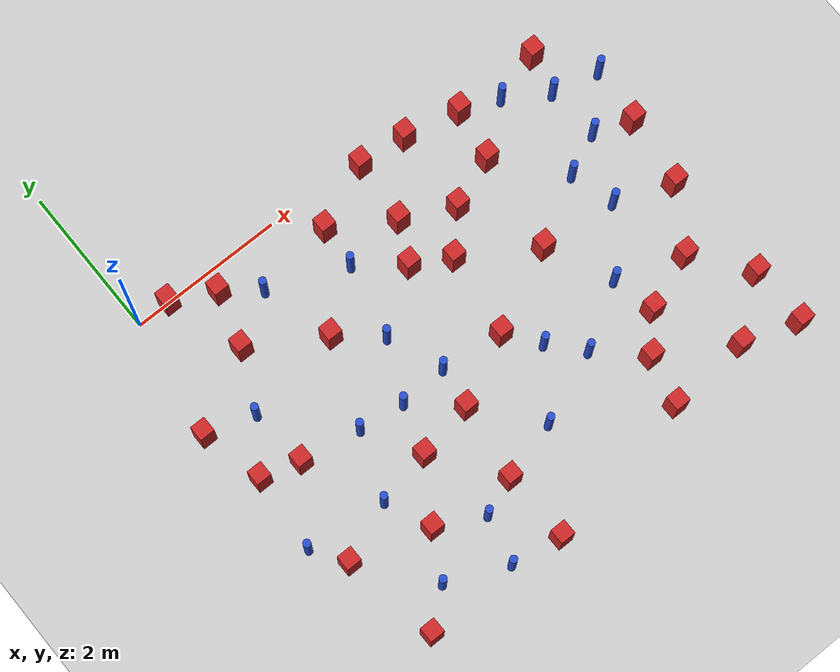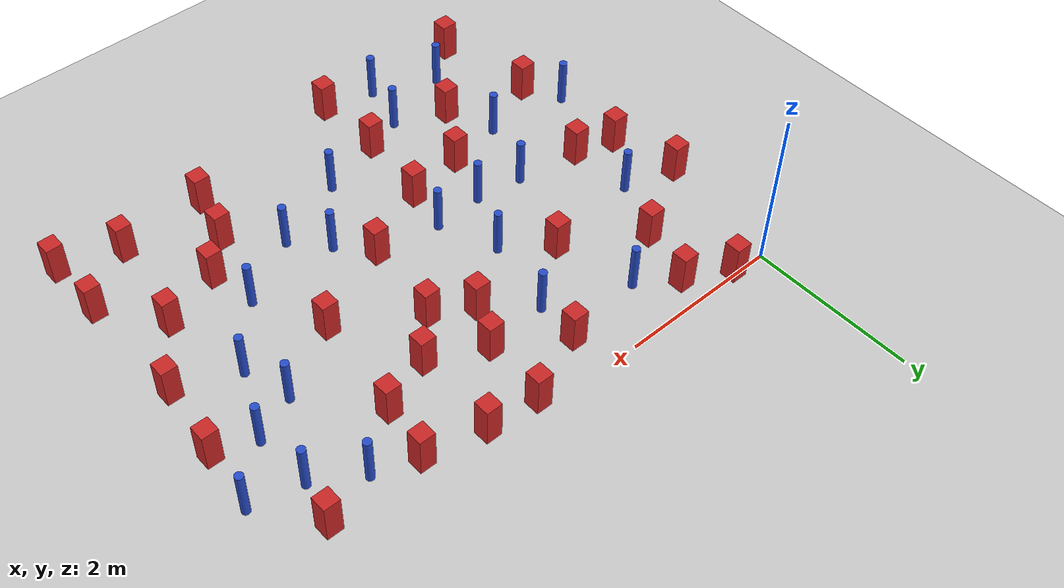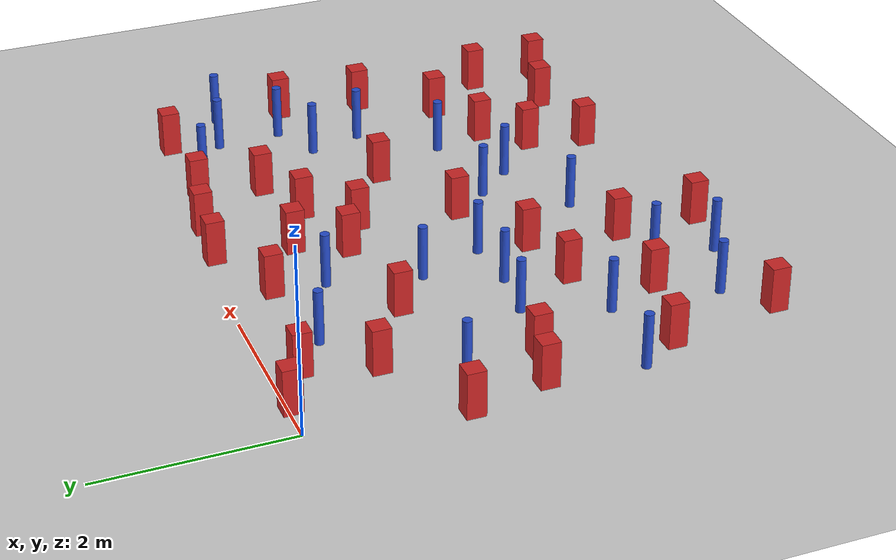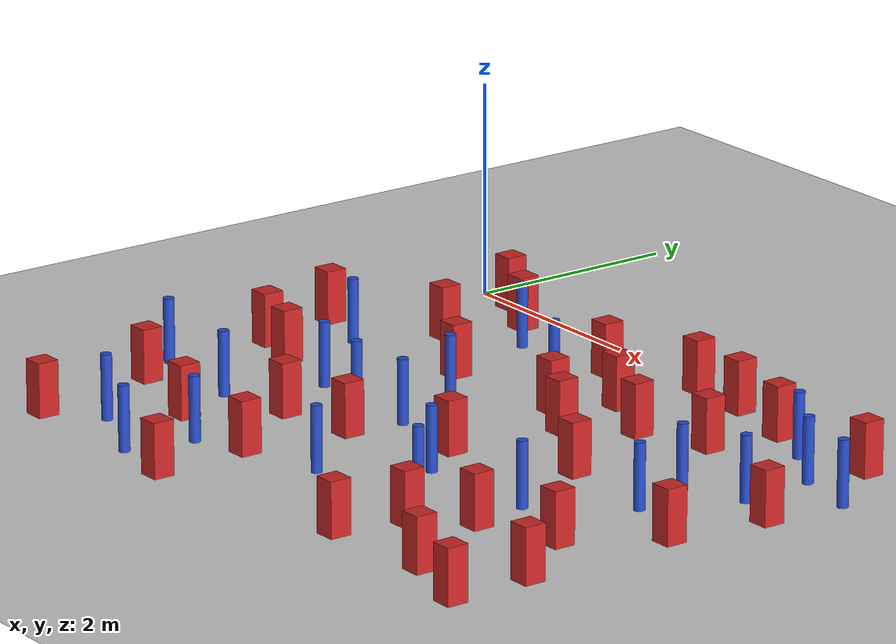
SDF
<sdf version="1.6">
 <world name="default">
  <model name="ground_plane">
   <static>1</static>
   <link name="link">
    <collision name="collision">
     <geometry><plane><normal>0 0 1</normal><size>100 100</size></plane></geometry>
     <surface><friction><ode><mu>100</mu><mu2>50</mu2></ode></friction></surface>
    </collision>
    <visual name="visual">
     <cast_shadows>0</cast_shadows>
     <geometry><plane><normal>0 0 1</normal><size>100 100</size></plane></geometry>
     <material>
      <ambient>1.0 1.0 1.0 1.0</ambient>
      <diffuse>0.8 0.8 0.8 1.0</diffuse>
      <specular>0.01 0.01 0.01 1.000000</specular>
     </material>
    </visual>
   </link>
  </model>
  <model name="square_post_obstacle11">
   <static>true</static>
   <pose>3.41142529525 -1.7442742198 1.91545236811e-07 -7.35059704564e-06 1.12565212e-07 2.39332434364e-05</pose>
   <link name="link">
    <pose>0 0 0.25 0 -0 0</pose>
    <inertial>
     <mass>100</mass>
     <inertia>
      <ixx>0.166667</ixx>
      <ixy>0</ixy>
      <ixz>0</ixz>
      <iyy>0.166667</iyy>
      <iyz>0</iyz>
      <izz>0.166667</izz>
     </inertia>
    </inertial>
    <collision name="collision"><geometry><box><size>.2 .2 .5</size></box></geometry></collision>
    <visual name="visual">
     <geometry><box><size>.2 .2 .5</size></box></geometry>
     <material>
      <script><name>Gazebo/Red</name><uri>file://media/materials/scripts/gazebo.material</uri></script>
     </material>
    </visual>
   </link>
  </model>
  <model name="square_post_obstacle12">
   <static>true</static>
   <pose>4.44881122704 -4.14483674699 1.91545236811e-07 -7.35059704564e-06 1.12565212e-07 2.39332434364e-05</pose>
   <link name="link">
    <pose>0 0 0.25 0 -0 0</pose>
    <inertial>
     <mass>100</mass>
     <inertia>
      <ixx>0.166667</ixx>
      <ixy>0</ixy>
      <ixz>0</ixz>
      <iyy>0.166667</iyy>
      <iyz>0</iyz>
      <izz>0.166667</izz>
     </inertia>
    </inertial>
    <collision name="collision"><geometry><box><size>.2 .2 .5</size></box></geometry></collision>
    <visual name="visual">
     <geometry><box><size>.2 .2 .5</size></box></geometry>
     <material>
      <script><name>Gazebo/Red</name><uri>file://media/materials/scripts/gazebo.material</uri></script>
     </material>
    </visual>
   </link>
  </model>
  <model name="pole_obstacle25">
   <static>true</static>
   <pose>0.904775360548 -3.52407506099 7.38925637345e-09 -8.47170692799e-08 1.2497676509e-08 -1.74513093016e-07</pose>
   <link name="link">
    <pose>0 0 0.3 0 -0 0</pose>
    <inertial>
     <mass>1</mass>
     <inertia><ixx>0.145833</ixx><ixy>0</ixy><ixz>0</ixz><iyy>0.145833</iyy><iyz>0</iyz><izz>0.125</izz></inertia>
    </inertial>
    <collision name="collision">
     <geometry><cylinder><radius>0.05</radius><length>.6</length></cylinder></geometry>
    </collision>
    <visual name="visual">
     <geometry><cylinder><radius>0.05</radius><length>.6</length></cylinder></geometry>
     <material>
      <script><name>Gazebo/Blue</name><uri>file://media/materials/scripts/gazebo.material</uri></script>
     </material>
    </visual>
   </link>
  </model>
  <model name="pole_obstacle28">
   <static>true</static>
   <pose>5.33406300753 -2.4171179551 7.38925637345e-09 -8.47170692798e-08 1.24976764937e-08 -1.74513093023e-07</pose>
   <link name="link">
    <pose>0 0 0.3 0 -0 0</pose>
    <inertial>
     <mass>1</mass>
     <inertia><ixx>0.145833</ixx><ixy>0</ixy><ixz>0</ixz><iyy>0.145833</iyy><iyz>0</iyz><izz>0.125</izz></inertia>
    </inertial>
    <collision name="collision">
     <geometry><cylinder><radius>0.05</radius><length>.6</length></cylinder></geometry>
    </collision>
    <visual name="visual">
     <geometry><cylinder><radius>0.05</radius><length>.6</length></cylinder></geometry>
     <material>
      <script><name>Gazebo/Blue</name><uri>file://media/materials/scripts/gazebo.material</uri></script>
     </material>
    </visual>
   </link>
  </model>
  <model name="square_post_obstacle21">
   <static>true</static>
   <pose>0.152977486269 -3.82487153411 1.91545236811e-07 -7.35059704564e-06 1.12565212e-07 2.39332434364e-05</pose>
   <link name="link">
    <pose>0 0 0.25 0 -0 0</pose>
    <inertial>
     <mass>100</mass>
     <inertia>
      <ixx>0.166667</ixx>
      <ixy>0</ixy>
      <ixz>0</ixz>
      <iyy>0.166667</iyy>
      <iyz>0</iyz>
      <izz>0.166667</izz>
     </inertia>
    </inertial>
    <collision name="collision"><geometry><box><size>.2 .2 .5</size></box></geometry></collision>
    <visual name="visual">
     <geometry><box><size>.2 .2 .5</size></box></geometry>
     <material>
      <script><name>Gazebo/Red</name><uri>file://media/materials/scripts/gazebo.material</uri></script>
     </material>
    </visual>
   </link>
  </model>
  <model name="pole_obstacle32">
   <static>true</static>
   <pose>0.395697218503 -1.76753382427 7.38925637345e-09 -8.47170692798e-08 1.24976765025e-08 -1.74513093018e-07</pose>
   <link name="link">
    <pose>0 0 0.3 0 -0 0</pose>
    <inertial>
     <mass>1</mass>
     <inertia><ixx>0.145833</ixx><ixy>0</ixy><ixz>0</ixz><iyy>0.145833</iyy><iyz>0</iyz><izz>0.125</izz></inertia>
    </inertial>
    <collision name="collision">
     <geometry><cylinder><radius>0.05</radius><length>.6</length></cylinder></geometry>
    </collision>
    <visual name="visual">
     <geometry><cylinder><radius>0.05</radius><length>.6</length></cylinder></geometry>
     <material>
      <script><name>Gazebo/Blue</name><uri>file://media/materials/scripts/gazebo.material</uri></script>
     </material>
    </visual>
   </link>
  </model>
  <model name="square_post_obstacle30">
   <static>true</static>
   <pose>2.44170695103 -0.489048194548 1.91545236811e-07 -7.35059704564e-06 1.12565212e-07 2.39332434364e-05</pose>
   <link name="link">
    <pose>0 0 0.25 0 -0 0</pose>
    <inertial>
     <mass>100</mass>
     <inertia>
      <ixx>0.166667</ixx>
      <ixy>0</ixy>
      <ixz>0</ixz>
      <iyy>0.166667</iyy>
      <iyz>0</iyz>
      <izz>0.166667</izz>
     </inertia>
    </inertial>
    <collision name="collision"><geometry><box><size>.2 .2 .5</size></box></geometry></collision>
    <visual name="visual">
     <geometry><box><size>.2 .2 .5</size></box></geometry>
     <material>
      <script><name>Gazebo/Red</name><uri>file://media/materials/scripts/gazebo.material</uri></script>
     </material>
    </visual>
   </link>
  </model>
  <model name="pole_obstacle40">
   <static>true</static>
   <pose>1.40312148866 -0.636701716057 7.38925637345e-09 -8.47170692799e-08 1.24976765075e-08 -1.74513093017e-07</pose>
   <link name="link">
    <pose>0 0 0.3 0 -0 0</pose>
    <inertial>
     <mass>1</mass>
     <inertia><ixx>0.145833</ixx><ixy>0</ixy><ixz>0</ixz><iyy>0.145833</iyy><iyz>0</iyz><izz>0.125</izz></inertia>
    </inertial>
    <collision name="collision">
     <geometry><cylinder><radius>0.05</radius><length>.6</length></cylinder></geometry>
    </collision>
    <visual name="visual">
     <geometry><cylinder><radius>0.05</radius><length>.6</length></cylinder></geometry>
     <material>
      <script><name>Gazebo/Blue</name><uri>file://media/materials/scripts/gazebo.material</uri></script>
     </material>
    </visual>
   </link>
  </model>
  <model name="pole_obstacle41">
   <static>true</static>
   <pose>4.71744663321 -3.16515707884 7.38925637345e-09 -8.47170692798e-08 1.24976764937e-08 -1.74513093023e-07</pose>
   <link name="link">
    <pose>0 0 0.3 0 -0 0</pose>
    <inertial>
     <mass>1</mass>
     <inertia><ixx>0.145833</ixx><ixy>0</ixy><ixz>0</ixz><iyy>0.145833</iyy><iyz>0</iyz><izz>0.125</izz></inertia>
    </inertial>
    <collision name="collision">
     <geometry><cylinder><radius>0.05</radius><length>.6</length></cylinder></geometry>
    </collision>
    <visual name="visual">
     <geometry><cylinder><radius>0.05</radius><length>.6</length></cylinder></geometry>
     <material>
      <script><name>Gazebo/Blue</name><uri>file://media/materials/scripts/gazebo.material</uri></script>
     </material>
    </visual>
   </link>
  </model>
  <model name="pole_obstacle43">
   <static>true</static>
   <pose>0.825884879727 -4.69347359204 7.38925637345e-09 -8.471706928e-08 1.24976765086e-08 -1.74513093015e-07</pose>
   <link name="link">
    <pose>0 0 0.3 0 -0 0</pose>
    <inertial>
     <mass>1</mass>
     <inertia><ixx>0.145833</ixx><ixy>0</ixy><ixz>0</ixz><iyy>0.145833</iyy><iyz>0</iyz><izz>0.125</izz></inertia>
    </inertial>
    <collision name="collision">
     <geometry><cylinder><radius>0.05</radius><length>.6</length></cylinder></geometry>
    </collision>
    <visual name="visual">
     <geometry><cylinder><radius>0.05</radius><length>.6</length></cylinder></geometry>
     <material>
      <script><name>Gazebo/Blue</name><uri>file://media/materials/scripts/gazebo.material</uri></script>
     </material>
    </visual>
   </link>
  </model>
  <model name="pole_obstacle45">
   <static>true</static>
   <pose>1.74336613982 -4.40601920165 7.38925637345e-09 -8.47170692799e-08 1.24976765033e-08 -1.74513093018e-07</pose>
   <link name="link">
    <pose>0 0 0.3 0 -0 0</pose>
    <inertial>
     <mass>1</mass>
     <inertia><ixx>0.145833</ixx><ixy>0</ixy><ixz>0</ixz><iyy>0.145833</iyy><iyz>0</iyz><izz>0.125</izz></inertia>
    </inertial>
    <collision name="collision">
     <geometry><cylinder><radius>0.05</radius><length>.6</length></cylinder></geometry>
    </collision>
    <visual name="visual">
     <geometry><cylinder><radius>0.05</radius><length>.6</length></cylinder></geometry>
     <material>
      <script><name>Gazebo/Blue</name><uri>file://media/materials/scripts/gazebo.material</uri></script>
     </material>
    </visual>
   </link>
  </model>
  <model name="square_post_obstacle35">
   <static>true</static>
   <pose>5.36860324915 -4.69992963145 1.91545236811e-07 -7.35059704564e-06 1.12565212e-07 2.39332434364e-05</pose>
   <link name="link">
    <pose>0 0 0.25 0 -0 0</pose>
    <inertial>
     <mass>100</mass>
     <inertia>
      <ixx>0.166667</ixx>
      <ixy>0</ixy>
      <ixz>0</ixz>
      <iyy>0.166667</iyy>
      <iyz>0</iyz>
      <izz>0.166667</izz>
     </inertia>
    </inertial>
    <collision name="collision"><geometry><box><size>.2 .2 .5</size></box></geometry></collision>
    <visual name="visual">
     <geometry><box><size>.2 .2 .5</size></box></geometry>
     <material>
      <script><name>Gazebo/Red</name><uri>file://media/materials/scripts/gazebo.material</uri></script>
     </material>
    </visual>
   </link>
  </model>
  <model name="square_post_obstacle49">
   <static>true</static>
   <pose>3.27737277552 -0.130120082628 1.91545236811e-07 -7.35059704564e-06 1.12565212e-07 2.39332434364e-05</pose>
   <link name="link">
    <pose>0 0 0.25 0 -0 0</pose>
    <inertial>
     <mass>100</mass>
     <inertia>
      <ixx>0.166667</ixx>
      <ixy>0</ixy>
      <ixz>0</ixz>
      <iyy>0.166667</iyy>
      <iyz>0</iyz>
      <izz>0.166667</izz>
     </inertia>
    </inertial>
    <collision name="collision"><geometry><box><size>.2 .2 .5</size></box></geometry></collision>
    <visual name="visual">
     <geometry><box><size>.2 .2 .5</size></box></geometry>
     <material>
      <script><name>Gazebo/Red</name><uri>file://media/materials/scripts/gazebo.material</uri></script>
     </material>
    </visual>
   </link>
  </model>
  <model name="pole_obstacle64">
   <static>true</static>
   <pose>3.55995209783 -3.23905511519 7.38925637345e-09 -8.47170692798e-08 1.24976764939e-08 -1.74513093025e-07</pose>
   <link name="link">
    <pose>0 0 0.3 0 -0 0</pose>
    <inertial>
     <mass>1</mass>
     <inertia><ixx>0.145833</ixx><ixy>0</ixy><ixz>0</ixz><iyy>0.145833</iyy><iyz>0</iyz><izz>0.125</izz></inertia>
    </inertial>
    <collision name="collision">
     <geometry><cylinder><radius>0.05</radius><length>.6</length></cylinder></geometry>
    </collision>
    <visual name="visual">
     <geometry><cylinder><radius>0.05</radius><length>.6</length></cylinder></geometry>
     <material>
      <script><name>Gazebo/Blue</name><uri>file://media/materials/scripts/gazebo.material</uri></script>
     </material>
    </visual>
   </link>
  </model>
  <model name="pole_obstacle67">
   <static>true</static>
   <pose>2.44356710387 -2.72079232986 7.38925637345e-09 -8.47170692798e-08 1.24976764939e-08 -1.74513093025e-07</pose>
   <link name="link">
    <pose>0 0 0.3 0 -0 0</pose>
    <inertial>
     <mass>1</mass>
     <inertia><ixx>0.145833</ixx><ixy>0</ixy><ixz>0</ixz><iyy>0.145833</iyy><iyz>0</iyz><izz>0.125</izz></inertia>
    </inertial>
    <collision name="collision">
     <geometry><cylinder><radius>0.05</radius><length>.6</length></cylinder></geometry>
    </collision>
    <visual name="visual">
     <geometry><cylinder><radius>0.05</radius><length>.6</length></cylinder></geometry>
     <material>
      <script><name>Gazebo/Blue</name><uri>file://media/materials/scripts/gazebo.material</uri></script>
     </material>
    </visual>
   </link>
  </model>
  <model name="square_post_obstacle58">
   <static>true</static>
   <pose>2.24488466259 -5.12793941893 1.91545236811e-07 -7.35059704564e-06 1.12565212e-07 2.39332434364e-05</pose>
   <link name="link">
    <pose>0 0 0.25 0 -0 0</pose>
    <inertial>
     <mass>100</mass>
     <inertia>
      <ixx>0.166667</ixx>
      <ixy>0</ixy>
      <ixz>0</ixz>
      <iyy>0.166667</iyy>
      <iyz>0</iyz>
      <izz>0.166667</izz>
     </inertia>
    </inertial>
    <collision name="collision"><geometry><box><size>.2 .2 .5</size></box></geometry></collision>
    <visual name="visual">
     <geometry><box><size>.2 .2 .5</size></box></geometry>
     <material>
      <script><name>Gazebo/Red</name><uri>file://media/materials/scripts/gazebo.material</uri></script>
     </material>
    </visual>
   </link>
  </model>
  <model name="square_post_obstacle60">
   <static>true</static>
   <pose>2.9387993653 -1.47610655895 1.91545236811e-07 -7.35059704564e-06 1.12565212e-07 2.39332434364e-05</pose>
   <link name="link">
    <pose>0 0 0.25 0 -0 0</pose>
    <inertial>
     <mass>100</mass>
     <inertia>
      <ixx>0.166667</ixx>
      <ixy>0</ixy>
      <ixz>0</ixz>
      <iyy>0.166667</iyy>
      <iyz>0</iyz>
      <izz>0.166667</izz>
     </inertia>
    </inertial>
    <collision name="collision"><geometry><box><size>.2 .2 .5</size></box></geometry></collision>
    <visual name="visual">
     <geometry><box><size>.2 .2 .5</size></box></geometry>
     <material>
      <script><name>Gazebo/Red</name><uri>file://media/materials/scripts/gazebo.material</uri></script>
     </material>
    </visual>
   </link>
  </model>
  <model name="pole_obstacle71">
   <static>true</static>
   <pose>3.91670987767 -3.64196621496 7.38925637345e-09 -8.47170692798e-08 1.24976764939e-08 -1.74513093025e-07</pose>
   <link name="link">
    <pose>0 0 0.3 0 -0 0</pose>
    <inertial>
     <mass>1</mass>
     <inertia><ixx>0.145833</ixx><ixy>0</ixy><ixz>0</ixz><iyy>0.145833</iyy><iyz>0</iyz><izz>0.125</izz></inertia>
    </inertial>
    <collision name="collision">
     <geometry><cylinder><radius>0.05</radius><length>.6</length></cylinder></geometry>
    </collision>
    <visual name="visual">
     <geometry><cylinder><radius>0.05</radius><length>.6</length></cylinder></geometry>
     <material>
      <script><name>Gazebo/Blue</name><uri>file://media/materials/scripts/gazebo.material</uri></script>
     </material>
    </visual>
   </link>
  </model>
  <model name="square_post_obstacle63">
   <static>true</static>
   <pose>6.19465507121 -1.76244402194 1.91545236811e-07 -7.35059704564e-06 1.12565212e-07 2.39332434364e-05</pose>
   <link name="link">
    <pose>0 0 0.25 0 -0 0</pose>
    <inertial>
     <mass>100</mass>
     <inertia>
      <ixx>0.166667</ixx>
      <ixy>0</ixy>
      <ixz>0</ixz>
      <iyy>0.166667</iyy>
      <iyz>0</iyz>
      <izz>0.166667</izz>
     </inertia>
    </inertial>
    <collision name="collision"><geometry><box><size>.2 .2 .5</size></box></geometry></collision>
    <visual name="visual">
     <geometry><box><size>.2 .2 .5</size></box></geometry>
     <material>
      <script><name>Gazebo/Red</name><uri>file://media/materials/scripts/gazebo.material</uri></script>
     </material>
    </visual>
   </link>
  </model>
  <model name="square_post_obstacle66">
   <static>true</static>
   <pose>0.760833042326 -1.01873029239 1.91545236811e-07 -7.35059704564e-06 1.12565212e-07 2.39332434364e-05</pose>
   <link name="link">
    <pose>0 0 0.25 0 -0 0</pose>
    <inertial>
     <mass>100</mass>
     <inertia>
      <ixx>0.166667</ixx>
      <ixy>0</ixy>
      <ixz>0</ixz>
      <iyy>0.166667</iyy>
      <iyz>0</iyz>
      <izz>0.166667</izz>
     </inertia>
    </inertial>
    <collision name="collision"><geometry><box><size>.2 .2 .5</size></box></geometry></collision>
    <visual name="visual">
     <geometry><box><size>.2 .2 .5</size></box></geometry>
     <material>
      <script><name>Gazebo/Red</name><uri>file://media/materials/scripts/gazebo.material</uri></script>
     </material>
    </visual>
   </link>
  </model>
  <model name="pole_obstacle79">
   <static>true</static>
   <pose>1.59059209435 -5.02709130865 7.38925637345e-09 -8.47170692799e-08 1.24976765033e-08 -1.74513093018e-07</pose>
   <link name="link">
    <pose>0 0 0.3 0 -0 0</pose>
    <inertial>
     <mass>1</mass>
     <inertia><ixx>0.145833</ixx><ixy>0</ixy><ixz>0</ixz><iyy>0.145833</iyy><iyz>0</iyz><izz>0.125</izz></inertia>
    </inertial>
    <collision name="collision">
     <geometry><cylinder><radius>0.05</radius><length>.6</length></cylinder></geometry>
    </collision>
    <visual name="visual">
     <geometry><cylinder><radius>0.05</radius><length>.6</length></cylinder></geometry>
     <material>
      <script><name>Gazebo/Blue</name><uri>file://media/materials/scripts/gazebo.material</uri></script>
     </material>
    </visual>
   </link>
  </model>
  <model name="pole_obstacle80">
   <static>true</static>
   <pose>2.98728916023 -4.01760443156 7.38925637345e-09 -8.47170692799e-08 1.24976764995e-08 -1.74513093021e-07</pose>
   <link name="link">
    <pose>0 0 0.3 0 -0 0</pose>
    <inertial>
     <mass>1</mass>
     <inertia><ixx>0.145833</ixx><ixy>0</ixy><ixz>0</ixz><iyy>0.145833</iyy><iyz>0</iyz><izz>0.125</izz></inertia>
    </inertial>
    <collision name="collision">
     <geometry><cylinder><radius>0.05</radius><length>.6</length></cylinder></geometry>
    </collision>
    <visual name="visual">
     <geometry><cylinder><radius>0.05</radius><length>.6</length></cylinder></geometry>
     <material>
      <script><name>Gazebo/Blue</name><uri>file://media/materials/scripts/gazebo.material</uri></script>
     </material>
    </visual>
   </link>
  </model>
  <model name="square_post_obstacle69">
   <static>true</static>
   <pose>6.09391767892 -4.92698489515 1.91545236811e-07 -7.35059704564e-06 1.12565212e-07 2.39332434364e-05</pose>
   <link name="link">
    <pose>0 0 0.25 0 -0 0</pose>
    <inertial>
     <mass>100</mass>
     <inertia>
      <ixx>0.166667</ixx>
      <ixy>0</ixy>
      <ixz>0</ixz>
      <iyy>0.166667</iyy>
      <iyz>0</iyz>
      <izz>0.166667</izz>
     </inertia>
    </inertial>
    <collision name="collision"><geometry><box><size>.2 .2 .5</size></box></geometry></collision>
    <visual name="visual">
     <geometry><box><size>.2 .2 .5</size></box></geometry>
     <material>
      <script><name>Gazebo/Red</name><uri>file://media/materials/scripts/gazebo.material</uri></script>
     </material>
    </visual>
   </link>
  </model>
  <model name="square_post_obstacle74">
   <static>true</static>
   <pose>5.78664180144 -0.347444047748 1.91545236811e-07 -7.35059704564e-06 1.12565212e-07 2.39332434364e-05</pose>
   <link name="link">
    <pose>0 0 0.25 0 -0 0</pose>
    <inertial>
     <mass>100</mass>
     <inertia>
      <ixx>0.166667</ixx>
      <ixy>0</ixy>
      <ixz>0</ixz>
      <iyy>0.166667</iyy>
      <iyz>0</iyz>
      <izz>0.166667</izz>
     </inertia>
    </inertial>
    <collision name="collision"><geometry><box><size>.2 .2 .5</size></box></geometry></collision>
    <visual name="visual">
     <geometry><box><size>.2 .2 .5</size></box></geometry>
     <material>
      <script><name>Gazebo/Red</name><uri>file://media/materials/scripts/gazebo.material</uri></script>
     </material>
    </visual>
   </link>
  </model>
  <model name="pole_obstacle91">
   <static>true</static>
   <pose>1.22746048178 -2.67803699878 7.38925637345e-09 -8.47170692799e-08 1.24976765053e-08 -1.74513093017e-07</pose>
   <link name="link">
    <pose>0 0 0.3 0 -0 0</pose>
    <inertial>
     <mass>1</mass>
     <inertia><ixx>0.145833</ixx><ixy>0</ixy><ixz>0</ixz><iyy>0.145833</iyy><iyz>0</iyz><izz>0.125</izz></inertia>
    </inertial>
    <collision name="collision">
     <geometry><cylinder><radius>0.05</radius><length>.6</length></cylinder></geometry>
    </collision>
    <visual name="visual">
     <geometry><cylinder><radius>0.05</radius><length>.6</length></cylinder></geometry>
     <material>
      <script><name>Gazebo/Blue</name><uri>file://media/materials/scripts/gazebo.material</uri></script>
     </material>
    </visual>
   </link>
  </model>
  <model name="square_post_obstacle88">
   <static>true</static>
   <pose>0.433019803727 -0.029692643432 1.91545236811e-07 -7.35059704564e-06 1.12565212e-07 2.39332434364e-05</pose>
   <link name="link">
    <pose>0 0 0.25 0 -0 0</pose>
    <inertial>
     <mass>100</mass>
     <inertia>
      <ixx>0.166667</ixx>
      <ixy>0</ixy>
      <ixz>0</ixz>
      <iyy>0.166667</iyy>
      <iyz>0</iyz>
      <izz>0.166667</izz>
     </inertia>
    </inertial>
    <collision name="collision"><geometry><box><size>.2 .2 .5</size></box></geometry></collision>
    <visual name="visual">
     <geometry><box><size>.2 .2 .5</size></box></geometry>
     <material>
      <script><name>Gazebo/Red</name><uri>file://media/materials/scripts/gazebo.material</uri></script>
     </material>
    </visual>
   </link>
  </model>
  <model name="pole_obstacle97">
   <static>true</static>
   <pose>6.28423835966 -1.02409039368 7.38925637345e-09 -8.471706928e-08 1.24976765101e-08 -1.74513093015e-07</pose>
   <link name="link">
    <pose>0 0 0.3 0 -0 0</pose>
    <inertial>
     <mass>1</mass>
     <inertia><ixx>0.145833</ixx><ixy>0</ixy><ixz>0</ixz><iyy>0.145833</iyy><iyz>0</iyz><izz>0.125</izz></inertia>
    </inertial>
    <collision name="collision">
     <geometry><cylinder><radius>0.05</radius><length>.6</length></cylinder></geometry>
    </collision>
    <visual name="visual">
     <geometry><cylinder><radius>0.05</radius><length>.6</length></cylinder></geometry>
     <material>
      <script><name>Gazebo/Blue</name><uri>file://media/materials/scripts/gazebo.material</uri></script>
     </material>
    </visual>
   </link>
  </model>
  <model name="pole_obstacle99">
   <static>true</static>
   <pose>-0.123148790606 -3.40063826729 7.38925637345e-09 -8.47170692799e-08 1.24976765077e-08 -1.74513093017e-07</pose>
   <link name="link">
    <pose>0 0 0.3 0 -0 0</pose>
    <inertial>
     <mass>1</mass>
     <inertia><ixx>0.145833</ixx><ixy>0</ixy><ixz>0</ixz><iyy>0.145833</iyy><iyz>0</iyz><izz>0.125</izz></inertia>
    </inertial>
    <collision name="collision">
     <geometry><cylinder><radius>0.05</radius><length>.6</length></cylinder></geometry>
    </collision>
    <visual name="visual">
     <geometry><cylinder><radius>0.05</radius><length>.6</length></cylinder></geometry>
     <material>
      <script><name>Gazebo/Blue</name><uri>file://media/materials/scripts/gazebo.material</uri></script>
     </material>
    </visual>
   </link>
  </model>
  <model name="square_post_obstacle112">
   <static>true</static>
   <pose>4.29236270645 -4.77458926915 1.91545236811e-07 -7.35059704564e-06 1.12565212e-07 2.39332434364e-05</pose>
   <link name="link">
    <pose>0 0 0.25 0 -0 0</pose>
    <inertial>
     <mass>100</mass>
     <inertia>
      <ixx>0.166667</ixx>
      <ixy>0</ixy>
      <ixz>0</ixz>
      <iyy>0.166667</iyy>
      <iyz>0</iyz>
      <izz>0.166667</izz>
     </inertia>
    </inertial>
    <collision name="collision"><geometry><box><size>.2 .2 .5</size></box></geometry></collision>
    <visual name="visual">
     <geometry><box><size>.2 .2 .5</size></box></geometry>
     <material>
      <script><name>Gazebo/Red</name><uri>file://media/materials/scripts/gazebo.material</uri></script>
     </material>
    </visual>
   </link>
  </model>
  <model name="square_post_obstacle121">
   <static>true</static>
   <pose>3.25652908017 -2.81316706166 1.91545236811e-07 -7.35059704564e-06 1.12565212e-07 2.39332434364e-05</pose>
   <link name="link">
    <pose>0 0 0.25 0 -0 0</pose>
    <inertial>
     <mass>100</mass>
     <inertia>
      <ixx>0.166667</ixx>
      <ixy>0</ixy>
      <ixz>0</ixz>
      <iyy>0.166667</iyy>
      <iyz>0</iyz>
      <izz>0.166667</izz>
     </inertia>
    </inertial>
    <collision name="collision"><geometry><box><size>.2 .2 .5</size></box></geometry></collision>
    <visual name="visual">
     <geometry><box><size>.2 .2 .5</size></box></geometry>
     <material>
      <script><name>Gazebo/Red</name><uri>file://media/materials/scripts/gazebo.material</uri></script>
     </material>
    </visual>
   </link>
  </model>
  <model name="square_post_obstacle122">
   <static>true</static>
   <pose>1.15036201386 -4.10943540513 1.91545236811e-07 -7.35059704564e-06 1.12565212e-07 2.39332434364e-05</pose>
   <link name="link">
    <pose>0 0 0.25 0 -0 0</pose>
    <inertial>
     <mass>100</mass>
     <inertia>
      <ixx>0.166667</ixx>
      <ixy>0</ixy>
      <ixz>0</ixz>
      <iyy>0.166667</iyy>
      <iyz>0</iyz>
      <izz>0.166667</izz>
     </inertia>
    </inertial>
    <collision name="collision"><geometry><box><size>.2 .2 .5</size></box></geometry></collision>
    <visual name="visual">
     <geometry><box><size>.2 .2 .5</size></box></geometry>
     <material>
      <script><name>Gazebo/Red</name><uri>file://media/materials/scripts/gazebo.material</uri></script>
     </material>
    </visual>
   </link>
  </model>
  <model name="pole_obstacle127">
   <static>true</static>
   <pose>5.17563080394 -1.83691564992 7.38925637345e-09 -8.471706928e-08 1.24976765134e-08 -1.74513093015e-07</pose>
   <link name="link">
    <pose>0 0 0.3 0 -0 0</pose>
    <inertial>
     <mass>1</mass>
     <inertia><ixx>0.145833</ixx><ixy>0</ixy><ixz>0</ixz><iyy>0.145833</iyy><iyz>0</iyz><izz>0.125</izz></inertia>
    </inertial>
    <collision name="collision">
     <geometry><cylinder><radius>0.05</radius><length>.6</length></cylinder></geometry>
    </collision>
    <visual name="visual">
     <geometry><cylinder><radius>0.05</radius><length>.6</length></cylinder></geometry>
     <material>
      <script><name>Gazebo/Blue</name><uri>file://media/materials/scripts/gazebo.material</uri></script>
     </material>
    </visual>
   </link>
  </model>
  <model name="square_post_obstacle131">
   <static>true</static>
   <pose>4.51283937298 -1.02514816741 1.91545236811e-07 -7.35059704564e-06 1.12565212e-07 2.39332434364e-05</pose>
   <link name="link">
    <pose>0 0 0.25 0 -0 0</pose>
    <inertial>
     <mass>100</mass>
     <inertia>
      <ixx>0.166667</ixx>
      <ixy>0</ixy>
      <ixz>0</ixz>
      <iyy>0.166667</iyy>
      <iyz>0</iyz>
      <izz>0.166667</izz>
     </inertia>
    </inertial>
    <collision name="collision"><geometry><box><size>.2 .2 .5</size></box></geometry></collision>
    <visual name="visual">
     <geometry><box><size>.2 .2 .5</size></box></geometry>
     <material>
      <script><name>Gazebo/Red</name><uri>file://media/materials/scripts/gazebo.material</uri></script>
     </material>
    </visual>
   </link>
  </model>
  <model name="square_post_obstacle132">
   <static>true</static>
   <pose>0.460957831439 -2.53812764374 1.91545236811e-07 -7.35059704564e-06 1.12565212e-07 2.39332434364e-05</pose>
   <link name="link">
    <pose>0 0 0.25 0 -0 0</pose>
    <inertial>
     <mass>100</mass>
     <inertia>
      <ixx>0.166667</ixx>
      <ixy>0</ixy>
      <ixz>0</ixz>
      <iyy>0.166667</iyy>
      <iyz>0</iyz>
      <izz>0.166667</izz>
     </inertia>
    </inertial>
    <collision name="collision"><geometry><box><size>.2 .2 .5</size></box></geometry></collision>
    <visual name="visual">
     <geometry><box><size>.2 .2 .5</size></box></geometry>
     <material>
      <script><name>Gazebo/Red</name><uri>file://media/materials/scripts/gazebo.material</uri></script>
     </material>
    </visual>
   </link>
  </model>
  <model name="square_post_obstacle136">
   <static>true</static>
   <pose>5.5696145159 -3.45200754351 1.91545236811e-07 -7.35059704564e-06 1.12565212e-07 2.39332434364e-05</pose>
   <link name="link">
    <pose>0 0 0.25 0 -0 0</pose>
    <inertial>
     <mass>100</mass>
     <inertia>
      <ixx>0.166667</ixx>
      <ixy>0</ixy>
      <ixz>0</ixz>
      <iyy>0.166667</iyy>
      <iyz>0</iyz>
      <izz>0.166667</izz>
     </inertia>
    </inertial>
    <collision name="collision"><geometry><box><size>.2 .2 .5</size></box></geometry></collision>
    <visual name="visual">
     <geometry><box><size>.2 .2 .5</size></box></geometry>
     <material>
      <script><name>Gazebo/Red</name><uri>file://media/materials/scripts/gazebo.material</uri></script>
     </material>
    </visual>
   </link>
  </model>
  <model name="square_post_obstacle137">
   <static>true</static>
   <pose>3.85519486179 -1.27234991654 1.91545236811e-07 -7.35059704564e-06 1.12565212e-07 2.39332434364e-05</pose>
   <link name="link">
    <pose>0 0 0.25 0 -0 0</pose>
    <inertial>
     <mass>100</mass>
     <inertia>
      <ixx>0.166667</ixx>
      <ixy>0</ixy>
      <ixz>0</ixz>
      <iyy>0.166667</iyy>
      <iyz>0</iyz>
      <izz>0.166667</izz>
     </inertia>
    </inertial>
    <collision name="collision"><geometry><box><size>.2 .2 .5</size></box></geometry></collision>
    <visual name="visual">
     <geometry><box><size>.2 .2 .5</size></box></geometry>
     <material>
      <script><name>Gazebo/Red</name><uri>file://media/materials/scripts/gazebo.material</uri></script>
     </material>
    </visual>
   </link>
  </model>
  <model name="square_post_obstacle139">
   <static>true</static>
   <pose>4.32669803656 -2.31374635116 1.91545236811e-07 -7.35059704564e-06 1.12565212e-07 2.39332434364e-05</pose>
   <link name="link">
    <pose>0 0 0.25 0 -0 0</pose>
    <inertial>
     <mass>100</mass>
     <inertia>
      <ixx>0.166667</ixx>
      <ixy>0</ixy>
      <ixz>0</ixz>
      <iyy>0.166667</iyy>
      <iyz>0</iyz>
      <izz>0.166667</izz>
     </inertia>
    </inertial>
    <collision name="collision"><geometry><box><size>.2 .2 .5</size></box></geometry></collision>
    <visual name="visual">
     <geometry><box><size>.2 .2 .5</size></box></geometry>
     <material>
      <script><name>Gazebo/Red</name><uri>file://media/materials/scripts/gazebo.material</uri></script>
     </material>
    </visual>
   </link>
  </model>
  <model name="pole_obstacle145">
   <static>true</static>
   <pose>5.66829378055 -0.884581393097 7.38925637345e-09 -8.47170692799e-08 1.24976765038e-08 -1.74513093018e-07</pose>
   <link name="link">
    <pose>0 0 0.3 0 -0 0</pose>
    <inertial>
     <mass>1</mass>
     <inertia><ixx>0.145833</ixx><ixy>0</ixy><ixz>0</ixz><iyy>0.145833</iyy><iyz>0</iyz><izz>0.125</izz></inertia>
    </inertial>
    <collision name="collision">
     <geometry><cylinder><radius>0.05</radius><length>.6</length></cylinder></geometry>
    </collision>
    <visual name="visual">
     <geometry><cylinder><radius>0.05</radius><length>.6</length></cylinder></geometry>
     <material>
      <script><name>Gazebo/Blue</name><uri>file://media/materials/scripts/gazebo.material</uri></script>
     </material>
    </visual>
   </link>
  </model>
  <model name="square_post_obstacle142">
   <static>true</static>
   <pose>1.6710022672 -1.57236538518 1.91545236811e-07 -7.35059704564e-06 1.12565212e-07 2.39332434364e-05</pose>
   <link name="link">
    <pose>0 0 0.25 0 -0 0</pose>
    <inertial>
     <mass>100</mass>
     <inertia>
      <ixx>0.166667</ixx>
      <ixy>0</ixy>
      <ixz>0</ixz>
      <iyy>0.166667</iyy>
      <iyz>0</iyz>
      <izz>0.166667</izz>
     </inertia>
    </inertial>
    <collision name="collision"><geometry><box><size>.2 .2 .5</size></box></geometry></collision>
    <visual name="visual">
     <geometry><box><size>.2 .2 .5</size></box></geometry>
     <material>
      <script><name>Gazebo/Red</name><uri>file://media/materials/scripts/gazebo.material</uri></script>
     </material>
    </visual>
   </link>
  </model>
  <model name="square_post_obstacle150">
   <static>true</static>
   <pose>1.62615713711 -3.37857585699 1.91545236811e-07 -7.35059704564e-06 1.12565212e-07 2.39332434364e-05</pose>
   <link name="link">
    <pose>0 0 0.25 0 -0 0</pose>
    <inertial>
     <mass>100</mass>
     <inertia>
      <ixx>0.166667</ixx>
      <ixy>0</ixy>
      <ixz>0</ixz>
      <iyy>0.166667</iyy>
      <iyz>0</iyz>
      <izz>0.166667</izz>
     </inertia>
    </inertial>
    <collision name="collision"><geometry><box><size>.2 .2 .5</size></box></geometry></collision>
    <visual name="visual">
     <geometry><box><size>.2 .2 .5</size></box></geometry>
     <material>
      <script><name>Gazebo/Red</name><uri>file://media/materials/scripts/gazebo.material</uri></script>
     </material>
    </visual>
   </link>
  </model>
  <model name="square_post_obstacle151">
   <static>true</static>
   <pose>6.06737434324 -2.68476152118 1.91545236811e-07 -7.35059704564e-06 1.12565212e-07 2.39332434364e-05</pose>
   <link name="link">
    <pose>0 0 0.25 0 -0 0</pose>
    <inertial>
     <mass>100</mass>
     <inertia>
      <ixx>0.166667</ixx>
      <ixy>0</ixy>
      <ixz>0</ixz>
      <iyy>0.166667</iyy>
      <iyz>0</iyz>
      <izz>0.166667</izz>
     </inertia>
    </inertial>
    <collision name="collision"><geometry><box><size>.2 .2 .5</size></box></geometry></collision>
    <visual name="visual">
     <geometry><box><size>.2 .2 .5</size></box></geometry>
     <material>
      <script><name>Gazebo/Red</name><uri>file://media/materials/scripts/gazebo.material</uri></script>
     </material>
    </visual>
   </link>
  </model>
  <model name="pole_obstacle155">
   <static>true</static>
   <pose>1.81701921942 -2.75421090546 7.38925637345e-09 -8.47170692799e-08 1.24976765053e-08 -1.74513093017e-07</pose>
   <link name="link">
    <pose>0 0 0.3 0 -0 0</pose>
    <inertial>
     <mass>1</mass>
     <inertia><ixx>0.145833</ixx><ixy>0</ixy><ixz>0</ixz><iyy>0.145833</iyy><iyz>0</iyz><izz>0.125</izz></inertia>
    </inertial>
    <collision name="collision">
     <geometry><cylinder><radius>0.05</radius><length>.6</length></cylinder></geometry>
    </collision>
    <visual name="visual">
     <geometry><cylinder><radius>0.05</radius><length>.6</length></cylinder></geometry>
     <material>
      <script><name>Gazebo/Blue</name><uri>file://media/materials/scripts/gazebo.material</uri></script>
     </material>
    </visual>
   </link>
  </model>
  <model name="square_post_obstacle156">
   <static>true</static>
   <pose>6.08817283203 -4.15026105692 1.91545236811e-07 -7.35059704564e-06 1.12565212e-07 2.39332434364e-05</pose>
   <link name="link">
    <pose>0 0 0.25 0 -0 0</pose>
    <inertial>
     <mass>100</mass>
     <inertia>
      <ixx>0.166667</ixx>
      <ixy>0</ixy>
      <ixz>0</ixz>
      <iyy>0.166667</iyy>
      <iyz>0</iyz>
      <izz>0.166667</izz>
     </inertia>
    </inertial>
    <collision name="collision"><geometry><box><size>.2 .2 .5</size></box></geometry></collision>
    <visual name="visual">
     <geometry><box><size>.2 .2 .5</size></box></geometry>
     <material>
      <script><name>Gazebo/Red</name><uri>file://media/materials/scripts/gazebo.material</uri></script>
     </material>
    </visual>
   </link>
  </model>
  <model name="square_post_obstacle158">
   <static>true</static>
   <pose>0.975467324315 -0.303590866437 1.91545236811e-07 -7.35059704564e-06 1.12565212e-07 2.39332434364e-05</pose>
   <link name="link">
    <pose>0 0 0.25 0 -0 0</pose>
    <inertial>
     <mass>100</mass>
     <inertia>
      <ixx>0.166667</ixx>
      <ixy>0</ixy>
      <ixz>0</ixz>
      <iyy>0.166667</iyy>
      <iyz>0</iyz>
      <izz>0.166667</izz>
     </inertia>
    </inertial>
    <collision name="collision"><geometry><box><size>.2 .2 .5</size></box></geometry></collision>
    <visual name="visual">
     <geometry><box><size>.2 .2 .5</size></box></geometry>
     <material>
      <script><name>Gazebo/Red</name><uri>file://media/materials/scripts/gazebo.material</uri></script>
     </material>
    </visual>
   </link>
  </model>
  <model name="square_post_obstacle160">
   <static>true</static>
   <pose>2.365218016 -3.24727497979 1.91545236811e-07 -7.35059704564e-06 1.12565212e-07 2.39332434364e-05</pose>
   <link name="link">
    <pose>0 0 0.25 0 -0 0</pose>
    <inertial>
     <mass>100</mass>
     <inertia>
      <ixx>0.166667</ixx>
      <ixy>0</ixy>
      <ixz>0</ixz>
      <iyy>0.166667</iyy>
      <iyz>0</iyz>
      <izz>0.166667</izz>
     </inertia>
    </inertial>
    <collision name="collision"><geometry><box><size>.2 .2 .5</size></box></geometry></collision>
    <visual name="visual">
     <geometry><box><size>.2 .2 .5</size></box></geometry>
     <material>
      <script><name>Gazebo/Red</name><uri>file://media/materials/scripts/gazebo.material</uri></script>
     </material>
    </visual>
   </link>
  </model>
  <model name="square_post_obstacle182">
   <static>true</static>
   <pose>4.63596187885 -0.346565848001 1.91545236811e-07 -7.35059704564e-06 1.12565212e-07 2.39332434364e-05</pose>
   <link name="link">
    <pose>0 0 0.25 0 -0 0</pose>
    <inertial>
     <mass>100</mass>
     <inertia>
      <ixx>0.166667</ixx>
      <ixy>0</ixy>
      <ixz>0</ixz>
      <iyy>0.166667</iyy>
      <iyz>0</iyz>
      <izz>0.166667</izz>
     </inertia>
    </inertial>
    <collision name="collision"><geometry><box><size>.2 .2 .5</size></box></geometry></collision>
    <visual name="visual">
     <geometry><box><size>.2 .2 .5</size></box></geometry>
     <material>
      <script><name>Gazebo/Red</name><uri>file://media/materials/scripts/gazebo.material</uri></script>
     </material>
    </visual>
   </link>
  </model>
  <model name="square_post_obstacle191">
   <static>true</static>
   <pose>4.8377003919 -3.72181933648 1.91545236811e-07 -7.35059704564e-06 1.12565212e-07 2.39332434364e-05</pose>
   <link name="link">
    <pose>0 0 0.25 0 -0 0</pose>
    <inertial>
     <mass>100</mass>
     <inertia>
      <ixx>0.166667</ixx>
      <ixy>0</ixy>
      <ixz>0</ixz>
      <iyy>0.166667</iyy>
      <iyz>0</iyz>
      <izz>0.166667</izz>
     </inertia>
    </inertial>
    <collision name="collision"><geometry><box><size>.2 .2 .5</size></box></geometry></collision>
    <visual name="visual">
     <geometry><box><size>.2 .2 .5</size></box></geometry>
     <material>
      <script><name>Gazebo/Red</name><uri>file://media/materials/scripts/gazebo.material</uri></script>
     </material>
    </visual>
   </link>
  </model>
  <model name="pole_obstacle191">
   <static>true</static>
   <pose>2.17170692163 -2.00658328485 7.38925637345e-09 -8.471706928e-08 1.2497676511e-08 -1.74513093015e-07</pose>
   <link name="link">
    <pose>0 0 0.3 0 -0 0</pose>
    <inertial>
     <mass>1</mass>
     <inertia><ixx>0.145833</ixx><ixy>0</ixy><ixz>0</ixz><iyy>0.145833</iyy><iyz>0</iyz><izz>0.125</izz></inertia>
    </inertial>
    <collision name="collision">
     <geometry><cylinder><radius>0.05</radius><length>.6</length></cylinder></geometry>
    </collision>
    <visual name="visual">
     <geometry><cylinder><radius>0.05</radius><length>.6</length></cylinder></geometry>
     <material>
      <script><name>Gazebo/Blue</name><uri>file://media/materials/scripts/gazebo.material</uri></script>
     </material>
    </visual>
   </link>
  </model>
  <model name="square_post_obstacle205">
   <static>true</static>
   <pose>-0.0364178128507 -2.39879915734 1.91545236811e-07 -7.35059704564e-06 1.12565212e-07 2.39332434364e-05</pose>
   <link name="link">
    <pose>0 0 0.25 0 -0 0</pose>
    <inertial>
     <mass>100</mass>
     <inertia>
      <ixx>0.166667</ixx>
      <ixy>0</ixy>
      <ixz>0</ixz>
      <iyy>0.166667</iyy>
      <iyz>0</iyz>
      <izz>0.166667</izz>
     </inertia>
    </inertial>
    <collision name="collision"><geometry><box><size>.2 .2 .5</size></box></geometry></collision>
    <visual name="visual">
     <geometry><box><size>.2 .2 .5</size></box></geometry>
     <material>
      <script><name>Gazebo/Red</name><uri>file://media/materials/scripts/gazebo.material</uri></script>
     </material>
    </visual>
   </link>
  </model>
  <model name="pole_obstacle194">
   <static>true</static>
   <pose>2.39368714368 -1.04265820886 7.38925637345e-09 -8.471706928e-08 1.2497676513e-08 -1.74513093016e-07</pose>
   <link name="link">
    <pose>0 0 0.3 0 -0 0</pose>
    <inertial>
     <mass>1</mass>
     <inertia><ixx>0.145833</ixx><ixy>0</ixy><ixz>0</ixz><iyy>0.145833</iyy><iyz>0</iyz><izz>0.125</izz></inertia>
    </inertial>
    <collision name="collision">
     <geometry><cylinder><radius>0.05</radius><length>.6</length></cylinder></geometry>
    </collision>
    <visual name="visual">
     <geometry><cylinder><radius>0.05</radius><length>.6</length></cylinder></geometry>
     <material>
      <script><name>Gazebo/Blue</name><uri>file://media/materials/scripts/gazebo.material</uri></script>
     </material>
    </visual>
   </link>
  </model>
  <model name="pole_obstacle207">
   <static>true</static>
   <pose>5.71098706657 -1.59119420314 7.38925637345e-09 -8.471706928e-08 1.24976765134e-08 -1.74513093015e-07</pose>
   <link name="link">
    <pose>0 0 0.3 0 -0 0</pose>
    <inertial>
     <mass>1</mass>
     <inertia><ixx>0.145833</ixx><ixy>0</ixy><ixz>0</ixz><iyy>0.145833</iyy><iyz>0</iyz><izz>0.125</izz></inertia>
    </inertial>
    <collision name="collision">
     <geometry><cylinder><radius>0.05</radius><length>.6</length></cylinder></geometry>
    </collision>
    <visual name="visual">
     <geometry><cylinder><radius>0.05</radius><length>.6</length></cylinder></geometry>
     <material>
      <script><name>Gazebo/Blue</name><uri>file://media/materials/scripts/gazebo.material</uri></script>
     </material>
    </visual>
   </link>
  </model>
  <model name="pole_obstacle210">
   <static>true</static>
   <pose>5.13667191284 -0.544766208315 7.38925637345e-09 -8.47170692798e-08 1.24976765005e-08 -1.74513093021e-07</pose>
   <link name="link">
    <pose>0 0 0.3 0 -0 0</pose>
    <inertial>
     <mass>1</mass>
     <inertia><ixx>0.145833</ixx><ixy>0</ixy><ixz>0</ixz><iyy>0.145833</iyy><iyz>0</iyz><izz>0.125</izz></inertia>
    </inertial>
    <collision name="collision">
     <geometry><cylinder><radius>0.05</radius><length>.6</length></cylinder></geometry>
    </collision>
    <visual name="visual">
     <geometry><cylinder><radius>0.05</radius><length>.6</length></cylinder></geometry>
     <material>
      <script><name>Gazebo/Blue</name><uri>file://media/materials/scripts/gazebo.material</uri></script>
     </material>
    </visual>
   </link>
  </model>
  <model name="square_post_obstacle214">
   <static>true</static>
   <pose>-0.224742281016 -1.57431878167 1.91545236811e-07 -7.35059704564e-06 1.12565212e-07 2.39332434364e-05</pose>
   <link name="link">
    <pose>0 0 0.25 0 -0 0</pose>
    <inertial>
     <mass>100</mass>
     <inertia>
      <ixx>0.166667</ixx>
      <ixy>0</ixy>
      <ixz>0</ixz>
      <iyy>0.166667</iyy>
      <iyz>0</iyz>
      <izz>0.166667</izz>
     </inertia>
    </inertial>
    <collision name="collision"><geometry><box><size>.2 .2 .5</size></box></geometry></collision>
    <visual name="visual">
     <geometry><box><size>.2 .2 .5</size></box></geometry>
     <material>
      <script><name>Gazebo/Red</name><uri>file://media/materials/scripts/gazebo.material</uri></script>
     </material>
    </visual>
   </link>
  </model>
  <model name="square_post_obstacle219">
   <static>true</static>
   <pose>3.91304714889 -0.185827505819 1.91545236811e-07 -7.35059704564e-06 1.12565212e-07 2.39332434364e-05</pose>
   <link name="link">
    <pose>0 0 0.25 0 -0 0</pose>
    <inertial>
     <mass>100</mass>
     <inertia>
      <ixx>0.166667</ixx>
      <ixy>0</ixy>
      <ixz>0</ixz>
      <iyy>0.166667</iyy>
      <iyz>0</iyz>
      <izz>0.166667</izz>
     </inertia>
    </inertial>
    <collision name="collision"><geometry><box><size>.2 .2 .5</size></box></geometry></collision>
    <visual name="visual">
     <geometry><box><size>.2 .2 .5</size></box></geometry>
     <material>
      <script><name>Gazebo/Red</name><uri>file://media/materials/scripts/gazebo.material</uri></script>
     </material>
    </visual>
   </link>
  </model>
  <model name="square_post_obstacle220">
   <static>true</static>
   <pose>2.22631311419 -4.22072110835 1.91545236811e-07 -7.35059704564e-06 1.12565212e-07 2.39332434364e-05</pose>
   <link name="link">
    <pose>0 0 0.25 0 -0 0</pose>
    <inertial>
     <mass>100</mass>
     <inertia>
      <ixx>0.166667</ixx>
      <ixy>0</ixy>
      <ixz>0</ixz>
      <iyy>0.166667</iyy>
      <iyz>0</iyz>
      <izz>0.166667</izz>
     </inertia>
    </inertial>
    <collision name="collision"><geometry><box><size>.2 .2 .5</size></box></geometry></collision>
    <visual name="visual">
     <geometry><box><size>.2 .2 .5</size></box></geometry>
     <material>
      <script><name>Gazebo/Red</name><uri>file://media/materials/scripts/gazebo.material</uri></script>
     </material>
    </visual>
   </link>
  </model>
  <model name="square_post_obstacle221">
   <static>true</static>
   <pose>3.19691019652 -0.958505100383 1.91545236811e-07 -7.35059704564e-06 1.12565212e-07 2.39332434364e-05</pose>
   <link name="link">
    <pose>0 0 0.25 0 -0 0</pose>
    <inertial>
     <mass>100</mass>
     <inertia>
      <ixx>0.166667</ixx>
      <ixy>0</ixy>
      <ixz>0</ixz>
      <iyy>0.166667</iyy>
      <iyz>0</iyz>
      <izz>0.166667</izz>
     </inertia>
    </inertial>
    <collision name="collision"><geometry><box><size>.2 .2 .5</size></box></geometry></collision>
    <visual name="visual">
     <geometry><box><size>.2 .2 .5</size></box></geometry>
     <material>
      <script><name>Gazebo/Red</name><uri>file://media/materials/scripts/gazebo.material</uri></script>
     </material>
    </visual>
   </link>
  </model>
  <model name="square_post_obstacle223">
   <static>true</static>
   <pose>0.373105964805 -5.05702001192 1.91545236811e-07 -7.35059704564e-06 1.12565212e-07 2.39332434364e-05</pose>
   <link name="link">
    <pose>0 0 0.25 0 -0 0</pose>
    <inertial>
     <mass>100</mass>
     <inertia>
      <ixx>0.166667</ixx>
      <ixy>0</ixy>
      <ixz>0</ixz>
      <iyy>0.166667</iyy>
      <iyz>0</iyz>
      <izz>0.166667</izz>
     </inertia>
    </inertial>
    <collision name="collision"><geometry><box><size>.2 .2 .5</size></box></geometry></collision>
    <visual name="visual">
     <geometry><box><size>.2 .2 .5</size></box></geometry>
     <material>
      <script><name>Gazebo/Red</name><uri>file://media/materials/scripts/gazebo.material</uri></script>
     </material>
    </visual>
   </link>
  </model>
 </world>
</sdf>
